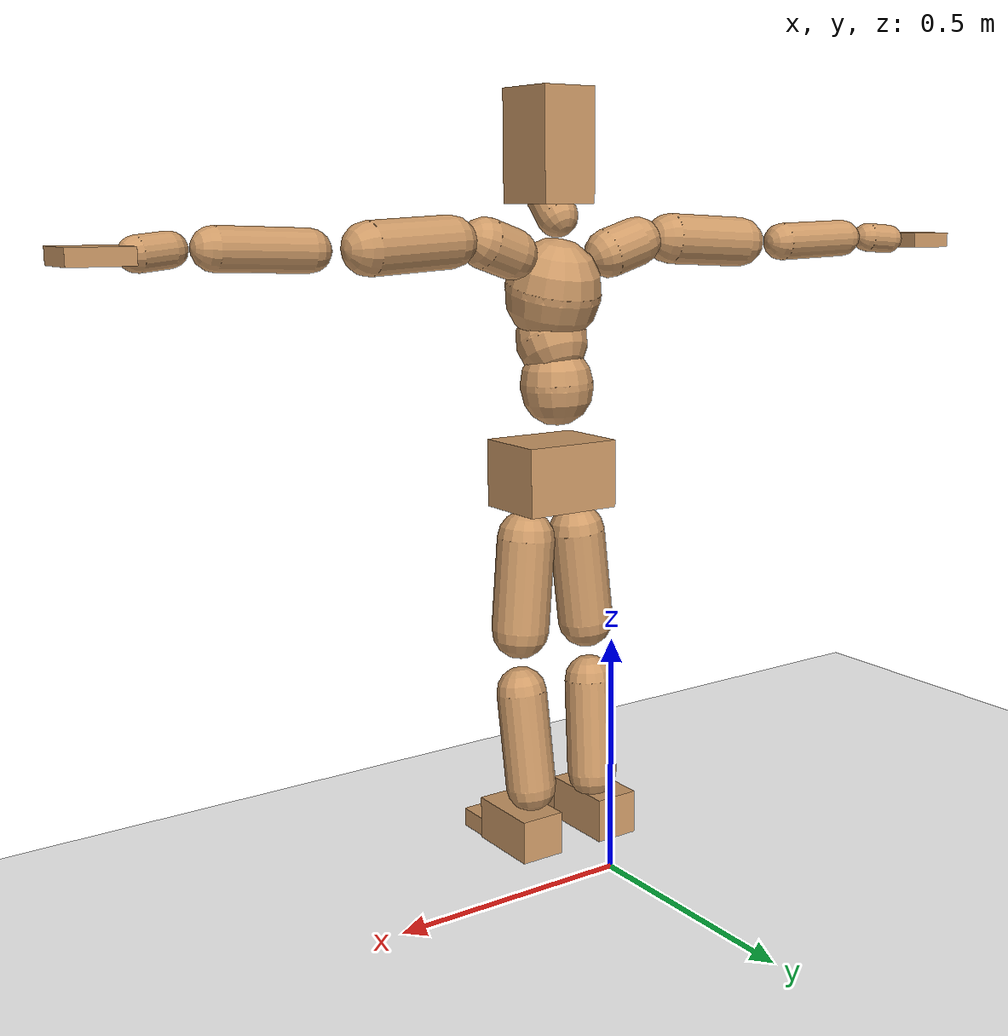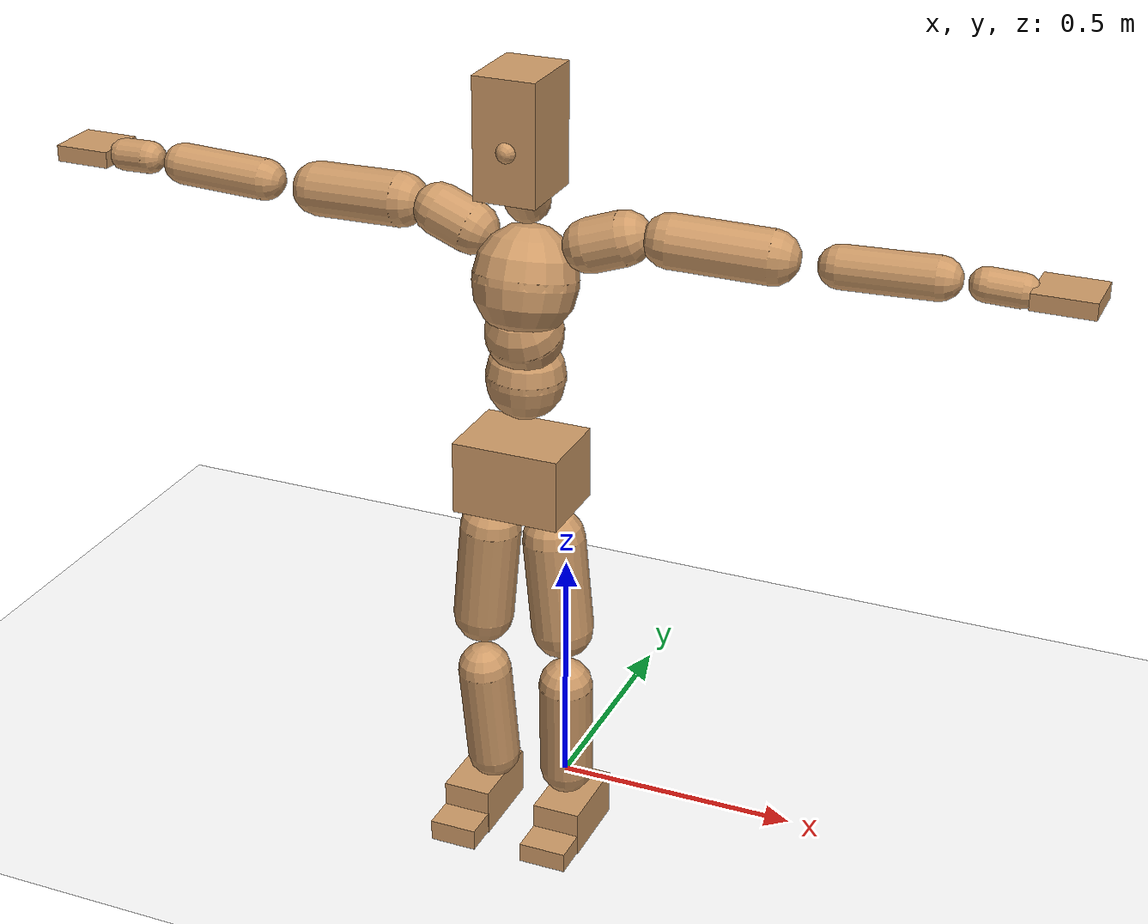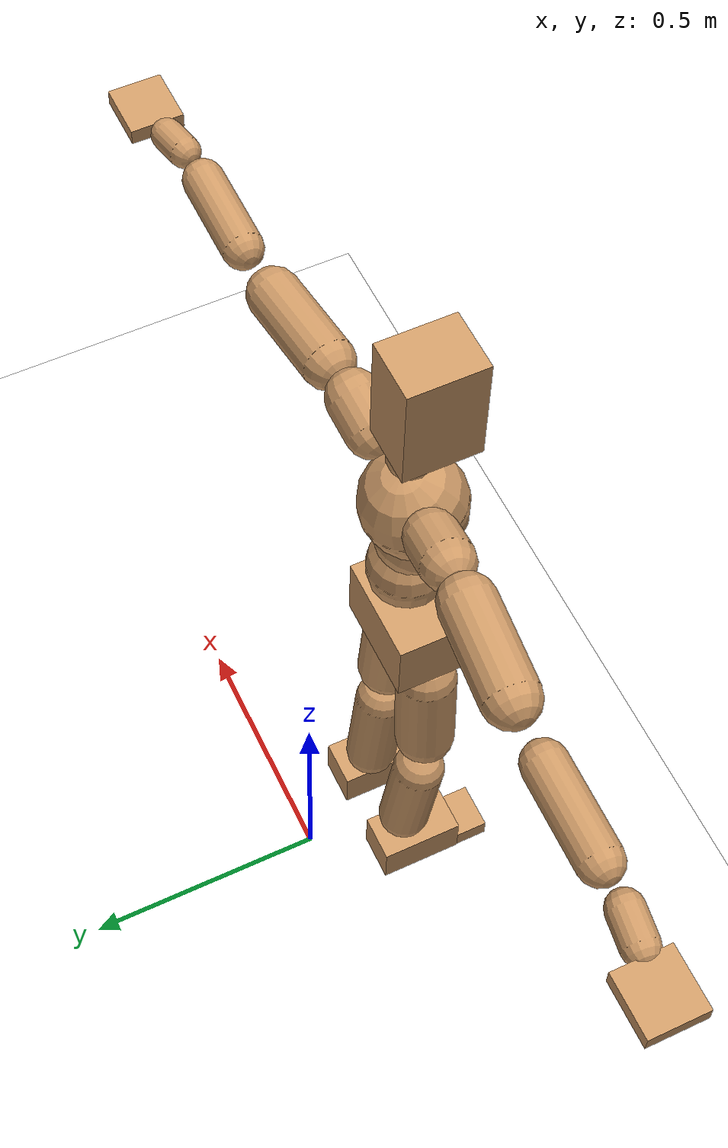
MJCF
<mujoco model="humanoid">
  <option integrator="implicitfast" />

  <visual>
    <global offwidth="1280" offheight="960" />
    <headlight active="1" ambient="0.34 0.34 0.34" diffuse="0.5 0.5 0.5" />
  </visual>

  <default>
    <joint damping="2" stiffness="2" armature="0.01" limited="true" solimplimit="0 .99 .01" />
    <geom condim="1" friction="0.7 0.005 0.0001" solimp=".99 .99 .003" solref="0.015 1" margin="0.001" rgba="0.8 0.6 .4 1" />
    <default class="smplcontact">
      <geom condim="3" friction="1. 0.005 0.0001" solref="0.015 1" solimp="0.98 0.98 0.001" priority="1" />
    </default>
    <default class="stiff_medium">
      <joint stiffness="10" />
    </default>
    <default class="stiff_medium_higher">
      <joint stiffness="50" />
    </default>
    <default class="stiff_high">
      <joint stiffness="100" />
    </default>
  </default>

  <asset>
    <texture type="skybox" builtin="gradient" rgb1="0.99 0.99 0.99" rgb2="0.608 0.828 0.892" width="100" />
    <texture builtin="flat" height="1278" mark="cross" markrgb="1 1 1" name="texgeom" random="0.01" rgb1="0.8 0.6 0.4" rgb2="0.8 0.6 0.4" type="cube" width="127" />
    <texture name="texplane" type="2d" builtin="checker" markrgb="1 1 1" rgb1="0.756 0.772 0.76" rgb2="0.6 0.6 0.6" width="100" height="100" />
    <material name="MatPlane" reflectance="0.5" texture="texplane" texrepeat="1 1" texuniform="true" />
    <material name="geom" texture="texgeom" texuniform="true" />
  </asset>

  <worldbody>
    <light name="tracking_light" pos="0 0 7" dir="0 0 -1" directional="true" cutoff="100" exponent="1" diffuse="1 1 1" specular="0.1 0.1 0.1" mode="trackcom" />
    <camera name="back" pos="0 3 2.4" xyaxes="-1 0 0 0 -1 2" mode="trackcom" />
    <camera name="side" pos="-3 0 2.4" xyaxes="0 -1 0 1 0 2" mode="trackcom" />
    <camera name="front_side" pos="-2.8 -2.8 0.8" xyaxes="0.5 -0.5 0 0.1 0.1 1" mode="trackcom" />
    <geom condim="3" name="floor" pos="0 0 0" rgba="1 1 1 1" size="100 100 .2" type="plane" material="MatPlane" />
    <body name="Pelvis" pos="-0.0018 -0.2233 0.825587" euler="90 0 0">
      <site name="Pelvis" size="0.01" />
      <freejoint name="Pelvis" />
      <geom type="box" pos="-0.0000 -0.0121 -0.0055" size="0.1069 0.0722 0.083" quat="1.0000 0.0000 0.0000 0.0000" density="3165.830099" name="Pelvis" />
      <body name="L_Hip" pos="0.0608125 -0.079975 -0.00595">
        <joint name="L_Hip_x" type="hinge" pos="0 0 0" axis="1 0 0" stiffness="8.018564387755102" range="-160.0 22.92" class="stiff_medium" damping="11.360360262787495" armature="0.00715327743412808"/>
        <joint name="L_Hip_y" type="hinge" pos="0 0 0" axis="0 1 0" stiffness="8.040343265306122" range="-70.0 70.0" class="stiff_medium" damping="8.207855033549663" armature="0.008378856726485993"/>
        <joint name="L_Hip_z" type="hinge" pos="0 0 0" axis="0 0 1" stiffness="8.038478673469386" range="-28.65 90.0" class="stiff_medium" damping="7.581991637464592" armature="0.007151427468522715"/>
        <geom type="capsule" density="2040.816327" fromto="0.0060375 -0.065625 -0.0007875 0.023975 -0.262675 -0.00315" size="0.0615" name="L_Hip" />
        <body name="L_Knee" pos="0.0300125 -0.3283 -0.0039375">
          <joint name="L_Knee_x" type="hinge" pos="0 0 0" axis="1 0 0" range="-5.16 171.89" damping="6.187481263356618" armature="0.007345812746914743" stiffness="1.6286882448979592"/>
          <joint name="L_Knee_y" type="hinge" pos="0 0 0" axis="0 1 0" range="-4.58 6.88" damping="6.664577128501176" armature="0.008600571968275737" stiffness="1.6138675306122447"/>
          <joint name="L_Knee_z" type="hinge" pos="0 0 0" axis="0 0 1" range="-6.88 4.58" damping="6.195974658750657" armature="0.007336542514311974" stiffness="1.635226244897959"/>
          <geom type="capsule" density="1234.567901" fromto="-0.0023625 -0.06965 -0.0076125 -0.0095375 -0.2786 -0.030625" size="0.0541" name="L_Knee" />
          <body name="L_Ankle" pos="-0.0119 -0.34825 -0.0382375">
            <joint name="L_Ankle_x" type="hinge" pos="0 0 0" axis="1 0 0" range="-45.84 45.84" class="stiff_medium" damping="5.16180813989309" armature="0.008458478225834364" stiffness="8.750018673469388"/>
            <joint name="L_Ankle_y" type="hinge" pos="0 0 0" axis="0 1 0" range="-74.48 22.92" class="stiff_medium" damping="2.5896377165389364" armature="0.008515827848834857" stiffness="8.750011836734695"/>
            <joint name="L_Ankle_z" type="hinge" pos="0 0 0" axis="0 0 1" range="-4.58 4.58" class="stiff_medium" damping="5.292201995620608" armature="0.008891238718238331" stiffness="8.75"/>
            <geom type="box" pos="0.0203875 -0.0209125 0.021175" size="0.0483 0.0464 0.085" quat="1.0000 0.0000 0.0000 0.0000" density="449.071558" name="L_Ankle" class="smplcontact" />
            <body name="L_Toe" pos="0.0231 -0.048825 0.104388">
              <joint name="L_Toe_x" type="hinge" pos="0 0 0" axis="1 0 0" range="-91.67 22.92" armature="0.009108934582590704" damping="1.785532722720798" stiffness="1.75"/>
              <joint name="L_Toe_y" type="hinge" pos="0 0 0" axis="0 1 0" range="-4.58 4.58" armature="0.009372172477213336" damping="1.811148908020726" stiffness="1.75"/>
              <joint name="L_Toe_z" type="hinge" pos="0 0 0" axis="0 0 1" range="-4.58 4.58" armature="0.009904425331424006" damping="1.8618670376797593" stiffness="1.75"/>
              <geom type="box" pos="-0.002625 0.0048125 0.0217" size="0.0478 0.02 0.0496" quat="1.0000 0.0000 0.0000 0.0000" density="423.206892" name="L_Toe" class="smplcontact" />
            </body>
          </body>
        </body>
      </body>
      <body name="R_Hip" pos="-0.0592375 -0.0791875 -0.0037625">
        <joint name="R_Hip_x" type="hinge" pos="0 0 0" axis="1 0 0" stiffness="8.018564387755102" range="-160.0 22.92" class="stiff_medium" damping="11.360360262787495" armature="0.00715327743412808"/>
        <joint name="R_Hip_y" type="hinge" pos="0 0 0" axis="0 1 0" stiffness="8.040343265306122" range="-70.0 70.0" class="stiff_medium" damping="8.207855033549663" armature="0.008378856726485993"/>
        <joint name="R_Hip_z" type="hinge" pos="0 0 0" axis="0 0 1" stiffness="8.038478673469386" range="-90.0 28.65" class="stiff_medium" damping="7.581991637464592" armature="0.007151427468522715"/>
        <geom type="capsule" density="2040.816327" fromto="-0.0067375 -0.0669375 -0.001575 -0.026775 -0.267838 -0.0062125" size="0.0606" name="R_Hip" />
        <body name="R_Knee" pos="-0.0335125 -0.334775 -0.0077875">
          <joint name="R_Knee_x" type="hinge" pos="0 0 0" axis="1 0 0" range="-5.16 171.89" damping="6.187481263356618" armature="0.007345812746914743" stiffness="1.6286882448979592"/>
          <joint name="R_Knee_y" type="hinge" pos="0 0 0" axis="0 1 0" range="-6.88 4.58" damping="6.664577128501176" armature="0.008600571968275737" stiffness="1.6138675306122447"/>
          <joint name="R_Knee_z" type="hinge" pos="0 0 0" axis="0 0 1" range="-4.58 6.88" damping="6.195974658750657" armature="0.007336542514311974" stiffness="1.635226244897959"/>
          <geom type="capsule" density="1234.567901" fromto="0.0028 -0.0697375 -0.0074375 0.011025 -0.278863 -0.029575" size="0.0541" name="R_Knee" />
          <body name="R_Ankle" pos="0.013825 -0.3486 -0.0370125">
            <joint name="R_Ankle_x" type="hinge" pos="0 0 0" axis="1 0 0" range="-45.84 45.84" class="stiff_medium" damping="5.16180813989309" armature="0.008458478225834364" stiffness="8.750018673469388"/>
            <joint name="R_Ankle_y" type="hinge" pos="0 0 0" axis="0 1 0" range="-22.92 74.48" class="stiff_medium" damping="2.5896377165389364" armature="0.008515827848834857" stiffness="8.750011836734695"/>
            <joint name="R_Ankle_z" type="hinge" pos="0 0 0" axis="0 0 1" range="-4.58 4.58" class="stiff_medium" damping="5.292201995620608" armature="0.008891238718238331" stiffness="8.75"/>
            <geom type="box" pos="-0.01855 -0.015225 0.0224" size="0.0483 0.0478 0.0865" quat="1.0000 0.0000 0.0000 0.0000" density="434.700981" name="R_Ankle" class="smplcontact" />
            <body name="R_Toe" pos="-0.022225 -0.0420875 0.107888">
              <joint name="R_Toe_x" type="hinge" pos="0 0 0" axis="1 0 0" range="-91.67 22.92" armature="0.009108934582590704" damping="1.785532722720798" stiffness="1.75"/>
              <joint name="R_Toe_y" type="hinge" pos="0 0 0" axis="0 1 0" range="-4.58 4.58" armature="0.009372172477213336" damping="1.811148908020726" stiffness="1.75"/>
              <joint name="R_Toe_z" type="hinge" pos="0 0 0" axis="0 0 1" range="-4.58 4.58" armature="0.009904425331424006" damping="1.8618670376797593" stiffness="1.75"/>
              <geom type="box" pos="0.003675 0.0039375 0.0198625" size="0.0479 0.0216 0.0493" quat="1.0000 0.0000 0.0000 0.0000" density="407.384095" name="R_Toe" class="smplcontact" />
            </body>
          </body>
        </body>
      </body>
      <body name="Torso" pos="-0.0025 0.109 -0.0267">
        <joint name="Torso_x" type="hinge" pos="0 0 0" axis="1 0 0" range="-25.78 57.3" class="stiff_medium" damping="16.24900266237955" armature="0.011000822944888114" stiffness="10.667084285714289"/>
        <joint name="Torso_y" type="hinge" pos="0 0 0" axis="0 1 0" range="-57.3 57.3" class="stiff_high" damping="25.827862257678852" armature="0.015782642166796146" stiffness="105.6664755102041"/>
        <joint name="Torso_z" type="hinge" pos="0 0 0" axis="0 0 1" range="-34.38 34.38" class="stiff_high" damping="22.95942684909093" armature="0.012628565201764905" stiffness="104.35375531914897"/>
        <geom type="capsule" density="2040.816327" fromto="0.0025 0.0608 0.0005 0.003 0.0743 0.0006" size="0.0769" name="Torso" />
        <body name="Spine" pos="0.0055 0.1352 0.0011">
          <joint name="Spine_x" type="hinge" pos="0 0 0" axis="1 0 0" stiffness="10.801640204081632" range="-25.78 57.3" class="stiff_medium" damping="16.52949868968122" armature="0.011242092117287042"/>
          <joint name="Spine_y" type="hinge" pos="0 0 0" axis="0 1 0" stiffness="10.993194042553192" range="-57.3 57.3" class="stiff_high" damping="10.550939846165114" armature="0.015822621024438047"/>
          <joint name="Spine_z" type="hinge" pos="0 0 0" axis="0 0 1" stiffness="21.950184081632656" range="-34.38 34.38" class="stiff_high" damping="14.755254913518767" armature="0.013775988465595863"/>
          <geom type="capsule" density="2040.816327" fromto="0.0007 0.0238 0.0114 0.0008 0.0291 0.014" size="0.0755" name="Spine" />
          <body name="Chest" pos="0.0015 0.0529 0.0254">
            <joint name="Chest_x" type="hinge" pos="0 0 0" axis="1 0 0" stiffness="11.160686250000001" range="-25.78 57.3" class="stiff_medium" damping="16.91302563562016" armature="0.011391192649850411"/>
            <joint name="Chest_y" type="hinge" pos="0 0 0" axis="0 1 0" stiffness="12.279827826086954" range="-57.3 57.3" class="stiff_high" damping="11.15352776697087" armature="0.015828955346832544"/>
            <joint name="Chest_z" type="hinge" pos="0 0 0" axis="0 0 1" stiffness="22.066057083333334" range="-34.38 34.38" class="stiff_high" damping="15.064016907343916" armature="0.014283161773945485"/>
            <geom type="capsule" density="2040.816327" fromto="-0.0009 0.0682 -0.0173 -0.001 0.0833 -0.0212" size="0.1002" name="Chest" />
            <body name="Neck" pos="-0.0028 0.2139 -0.0429">
              <joint name="Neck_x" type="hinge" pos="0 0 0" axis="1 0 0" range="-28.65 57.3" class="stiff_medium_higher" damping="10.000000000000004" armature="0.01000000000000001" stiffness="50.0"/>
              <joint name="Neck_y" type="hinge" pos="0 0 0" axis="0 1 0" range="-40.11 40.11" class="stiff_medium_higher" damping="10.0" armature="0.010000000000000002" stiffness="50.0"/>
              <joint name="Neck_z" type="hinge" pos="0 0 0" axis="0 0 1" range="-40.11 40.11" class="stiff_medium_higher" damping="10.0" armature="0.01" stiffness="50.0"/>
              <geom type="capsule" density="1000" fromto="0.001 0.013 0.0103 0.0041 0.052 0.0411" size="0.0436" name="Neck" />
              <body name="Head" pos="0.0052 0.065 0.0513">
                <joint name="Head_x" type="hinge" pos="0 0 0" axis="1 0 0" range="-28.65 57.3" class="stiff_medium_higher" damping="2.0" armature="0.01" stiffness="50.0"/>
                <joint name="Head_y" type="hinge" pos="0 0 0" axis="0 1 0" range="-40.11 40.11" class="stiff_medium_higher" damping="2.0" armature="0.01" stiffness="50.0"/>
                <joint name="Head_z" type="hinge" pos="0 0 0" axis="0 0 1" range="-40.11 40.11" class="stiff_medium_higher" damping="1.9999999999999987" armature="0.009999999999999988" stiffness="50.0"/>
                <geom type="box" pos="-0.0042 0.0876 -0.0116" size="0.0606 0.1154 0.076" quat="1.0000 0.0000 0.0000 0.0000" density="1018.069894" name="Head" />
                <geom type="capsule" name="nose" size="0.02 0.01" pos="0 0.07 0.05" quat="1 0 0 0" mass="0" contype="0" conaffinity="0" />
              </body>
            </body>
            <body name="L_Thorax" pos="0.09456 0.14604 -0.04092">
              <joint name="L_Thorax_x" type="hinge" pos="0 0 0" axis="1 0 0" range="-10.89 4.58" class="stiff_medium_higher" damping="27.34282803714544" armature="0.013883161405287439" stiffness="67.31448112244898"/>
              <joint name="L_Thorax_y" type="hinge" pos="0 0 0" axis="0 1 0" range="-28.65 17.19" class="stiff_medium_higher" damping="29.39539222803986" armature="0.015973211475722778" stiffness="67.620175"/>
              <joint name="L_Thorax_z" type="hinge" pos="0 0 0" axis="0 0 1" range="-31.51 40.11" class="stiff_medium_higher" damping="29.39640952740423" armature="0.01597511513827912" stiffness="67.61679693877551"/>
              <geom type="capsule" density="1000" fromto="0.02184 0.00732 -0.00216 0.08736 0.02928 -0.00852" size="0.0521" name="L_Thorax" />
              <body name="L_Shoulder" pos="0.1092 0.0366 -0.01068">
                <joint name="L_Shoulder_x" type="hinge" pos="0 0 0" axis="1 0 0" range="-97.4 97.4" class="stiff_medium" damping="7.934224871342828" armature="0.0130323072737046" stiffness="13.417919999999999"/>
                <joint name="L_Shoulder_y" type="hinge" pos="0 0 0" axis="0 1 0" range="-108.86 80.21" class="stiff_medium" damping="8.787023272078153" armature="0.015885669306109258" stiffness="13.501298367346937"/>
                <joint name="L_Shoulder_z" type="hinge" pos="0 0 0" axis="0 0 1" range="-97.4 85.94" class="stiff_medium" damping="8.786069504764413" armature="0.015888008764521212" stiffness="13.496380000000002"/>
                <geom type="capsule" density="1000" fromto="0.06228 -0.00312 -0.0066 0.24924 -0.01224 -0.0264" size="0.0517" name="L_Shoulder" />
                <body name="L_Elbow" pos="0.31152 -0.01536 -0.033">
                  <joint name="L_Elbow_x" type="hinge" pos="0 0 0" axis="1 0 0" range="-17.19 4.58" damping="6.232456205291431" armature="0.01173152521758843" stiffness="2.6488293469387756"/>
                  <joint name="L_Elbow_y" type="hinge" pos="0 0 0" axis="0 1 0" range="-180.0 17.19" damping="7.1561063679721615" armature="0.015461775606096727" stiffness="2.649623673469388"/>
                  <joint name="L_Elbow_z" type="hinge" pos="0 0 0" axis="0 0 1" range="-100.84 4.58" damping="7.157115854883429" armature="0.015474031127394233" stiffness="2.648272163265306"/>
                  <geom type="capsule" density="1000" fromto="0.05976 0.00216 -0.00024 0.23928 0.00864 -0.00108" size="0.0405" name="L_Elbow" />
                  <body name="L_Wrist" pos="0.29904 0.0108 -0.00144">
                    <joint name="L_Wrist_x" type="hinge" pos="0 0 0" axis="1 0 0" range="-180.0 22.92" armature="0.01147048725635361" damping="2.3885555565203527" stiffness="2.4869029183673472"/>
                    <joint name="L_Wrist_y" type="hinge" pos="0 0 0" axis="0 1 0" range="-17.19 17.19" armature="0.01413784103297409" damping="2.658561374727906" stiffness="2.4996562653061227"/>
                    <joint name="L_Wrist_z" type="hinge" pos="0 0 0" axis="0 0 1" range="-22.92 22.92" armature="0.014283798741946503" damping="2.6694984653463063" stiffness="2.4945122040816328"/>
                    <geom type="capsule" density="1000" fromto="0.02016 -0.00192 -0.0036 0.08064 -0.0078 -0.0144" size="0.0318" name="L_Wrist" class="smplcontact" />
                    <body name="L_Hand" pos="0.1008 -0.00984 -0.01788">
                      <joint name="L_Hand_x" type="hinge" pos="0 0 0" axis="1 0 0" range="-17.19 17.19" armature="0.010191691106290484" damping="2.2117892600832096" stiffness="2.4000000000000004"/>
                      <joint name="L_Hand_y" type="hinge" pos="0 0 0" axis="0 1 0" range="-51.57 51.57" armature="0.012318239464289315" damping="2.4316157062453088" stiffness="2.4000000000000004"/>
                      <joint name="L_Hand_z" type="hinge" pos="0 0 0" axis="0 0 1" range="-91.67 91.67" armature="0.012885099984317453" damping="2.48693546206418" stiffness="2.4000000000000004"/>
                      <geom type="box" pos="0.05916 0.0012 -0.00696" size="0.0585 0.0158 0.0538" quat="1.0000 0.0000 0.0000 0.0000" density="400.552564" name="L_Hand" class="smplcontact" />
                    </body>
                  </body>
                </body>
              </body>
            </body>
            <body name="R_Thorax" pos="-0.09816 0.14256 -0.04632">
              <joint name="R_Thorax_x" type="hinge" pos="0 0 0" axis="1 0 0" range="-10.89 4.58" class="stiff_medium_higher" damping="27.34282803714544" armature="0.013883161405287439" stiffness="67.31448112244898"/>
              <joint name="R_Thorax_y" type="hinge" pos="0 0 0" axis="0 1 0" range="-17.19 28.65" class="stiff_medium_higher" damping="29.39539222803986" armature="0.015973211475722778" stiffness="67.620175"/>
              <joint name="R_Thorax_z" type="hinge" pos="0 0 0" axis="0 0 1" range="-40.11 31.51" class="stiff_medium_higher" damping="29.39640952740423" armature="0.01597511513827912" stiffness="67.61679693877551"/>
              <geom type="capsule" density="1000" fromto="-0.02304 0.0078 -0.00216 -0.09216 0.0312 -0.00876" size="0.0511" name="R_Thorax" />
              <body name="R_Shoulder" pos="-0.1152 0.03912 -0.01092">
                <joint name="R_Shoulder_x" type="hinge" pos="0 0 0" axis="1 0 0" range="-97.4 97.4" class="stiff_medium" damping="7.934224871342828" armature="0.0130323072737046" stiffness="13.417919999999999"/>
                <joint name="R_Shoulder_y" type="hinge" pos="0 0 0" axis="0 1 0" range="-80.21 108.86" class="stiff_medium" damping="8.787023272078153" armature="0.015885669306109258" stiffness="13.501298367346937"/>
                <joint name="R_Shoulder_z" type="hinge" pos="0 0 0" axis="0 0 1" range="-85.94 97.4" class="stiff_medium" damping="8.786069504764413" armature="0.015888008764521212" stiffness="13.496380000000002"/>
                <geom type="capsule" density="1000" fromto="-0.06084 -0.00324 -0.00516 -0.2436 -0.01284 -0.02052" size="0.0531" name="R_Shoulder" />
                <body name="R_Elbow" pos="-0.30444 -0.01596 -0.02568">
                  <joint name="R_Elbow_x" type="hinge" pos="0 0 0" axis="1 0 0" range="-17.19 4.58" damping="6.232456205291431" armature="0.01173152521758843" stiffness="2.6488293469387756"/>
                  <joint name="R_Elbow_y" type="hinge" pos="0 0 0" axis="0 1 0" range="-17.19 180.0" damping="7.1561063679721615" armature="0.015461775606096727" stiffness="2.649623673469388"/>
                  <joint name="R_Elbow_z" type="hinge" pos="0 0 0" axis="0 0 1" range="-4.58 100.84" damping="7.157115854883429" armature="0.015474031127394233" stiffness="2.648272163265306"/>
                  <geom type="capsule" density="1000" fromto="-0.06132 0.00192 -0.00132 -0.24504 0.00744 -0.00528" size="0.0408" name="R_Elbow" />
                  <body name="R_Wrist" pos="-0.30636 0.00936 -0.00672">
                    <joint name="R_Wrist_x" type="hinge" pos="0 0 0" axis="1 0 0" range="-180.0 22.92" armature="0.01147048725635361" damping="2.3885555565203527" stiffness="2.4869029183673472"/>
                    <joint name="R_Wrist_y" type="hinge" pos="0 0 0" axis="0 1 0" range="-17.19 17.19" armature="0.01413784103297409" damping="2.658561374727906" stiffness="2.4996562653061227"/>
                    <joint name="R_Wrist_z" type="hinge" pos="0 0 0" axis="0 0 1" range="-22.92 22.92" armature="0.014283798741946503" damping="2.6694984653463063" stiffness="2.4945122040816328"/>
                    <geom type="capsule" density="1000" fromto="-0.02028 -0.00144 -0.00252 -0.08124 -0.00588 -0.00996" size="0.0326" name="R_Wrist" class="smplcontact" />
                    <body name="R_Hand" pos="-0.10152 -0.00732 -0.01236">
                      <joint name="R_Hand_x" type="hinge" pos="0 0 0" axis="1 0 0" range="-17.19 17.19" armature="0.010191691106290484" damping="2.2117892600832096" stiffness="2.4000000000000004"/>
                      <joint name="R_Hand_y" type="hinge" pos="0 0 0" axis="0 1 0" range="-51.57 51.57" armature="0.012318239464289315" damping="2.4316157062453088" stiffness="2.4000000000000004"/>
                      <joint name="R_Hand_z" type="hinge" pos="0 0 0" axis="0 0 1" range="-91.67 91.67" armature="0.012885099984317453" damping="2.48693546206418" stiffness="2.4000000000000004"/>
                      <geom type="box" pos="-0.05544 -0.00108 -0.00948" size="0.0569 0.0164 0.0546" quat="1.0000 0.0000 0.0000 0.0000" density="403.679611" name="R_Hand" class="smplcontact" />
                    </body>
                  </body>
                </body>
              </body>
            </body>
          </body>
        </body>
      </body>
    </body>
  </worldbody>
  <actuator>
    <general name="L_Hip_x" joint="L_Hip_x" biastype="affine" gainprm="230.3974619502181" biasprm="-172.65954561631258 -144.33415897959185 -1.5147147017049993" ctrllimited="true" ctrlrange="-1 1" forcerange="-288.6683179591837 288.6683179591837" />
    <general name="L_Hip_y" joint="L_Hip_y" biastype="affine" gainprm="176.8163833423812" biasprm="0.0 -144.7261787755102 -1.6415710067099327" ctrllimited="true" ctrlrange="-1 1" forcerange="-289.4523575510204 289.4523575510204" />
    <general name="L_Hip_z" joint="L_Hip_z" biastype="affine" gainprm="149.81713355526176" biasprm="77.4654963642251 -144.69261612244895 -1.5163983274929183" ctrllimited="true" ctrlrange="-1 1" forcerange="-289.3852322448979 289.3852322448979" />
    <general name="L_Knee_x" joint="L_Knee_x" biastype="affine" gainprm="226.4768283011216" biasprm="213.27580673621011 -146.58194204081633 -1.5468703158391546" ctrllimited="true" ctrlrange="-1 1" forcerange="-293.16388408163266 293.16388408163266" />
    <general name="L_Knee_y" joint="L_Knee_y" biastype="affine" gainprm="14.525877693080384" biasprm="2.915315767372154 -145.24807775510203 -1.666144282125294" ctrllimited="true" ctrlrange="-1 1" forcerange="-290.49615551020406 290.49615551020406" />
    <general name="L_Knee_z" joint="L_Knee_z" biastype="affine" gainprm="14.718120281465588" biasprm="-2.953898485808975 -147.17036204081631 -1.5489936646876643" ctrllimited="true" ctrlrange="-1 1" forcerange="-294.34072408163263 294.34072408163263" />
    <general name="L_Ankle_x" joint="L_Ankle_x" biastype="affine" gainprm="63.0047751266266" biasprm="0.0 -78.75016806122449 -1.7206027132976967" ctrllimited="true" ctrlrange="-1 1" forcerange="-157.50033612244897 157.50033612244897" />
    <general name="L_Ankle_y" joint="L_Ankle_y" biastype="affine" gainprm="66.93564902394152" biasprm="-35.43328607468609 -78.75010653061226 -1.7264251443592908" ctrllimited="true" ctrlrange="-1 1" forcerange="-157.5002130612245 157.5002130612245" />
    <general name="L_Ankle_z" joint="L_Ankle_z" biastype="affine" gainprm="6.294966279630548" biasprm="0.0 -78.75 -1.7640673318735358" ctrllimited="true" ctrlrange="-1 1" forcerange="-157.5 157.5" />
    <general name="L_Toe_x" joint="L_Toe_x" biastype="affine" gainprm="62.999142880599514" biasprm="-37.797286613502195 -63.0 -0.7142130890883193" ctrllimited="true" ctrlrange="-1 1" forcerange="-126.0 126.0" />
    <general name="L_Toe_y" joint="L_Toe_y" biastype="affine" gainprm="5.035973023704439" biasprm="0.0 -63.0 -0.7244595632082904" ctrllimited="true" ctrlrange="-1 1" forcerange="-126.0 126.0" />
    <general name="L_Toe_z" joint="L_Toe_z" biastype="affine" gainprm="5.035973023704439" biasprm="0.0 -63.0 -0.7447468150719038" ctrllimited="true" ctrlrange="-1 1" forcerange="-126.0 126.0" />
    <general name="R_Hip_x" joint="R_Hip_x" biastype="affine" gainprm="230.3974619502181" biasprm="-172.65954561631258 -144.33415897959185 -1.5147147017049993" ctrllimited="true" ctrlrange="-1 1" forcerange="-288.6683179591837 288.6683179591837" />
    <general name="R_Hip_y" joint="R_Hip_y" biastype="affine" gainprm="176.8163833423812" biasprm="0.0 -144.7261787755102 -1.6415710067099327" ctrllimited="true" ctrlrange="-1 1" forcerange="-289.4523575510204 289.4523575510204" />
    <general name="R_Hip_z" joint="R_Hip_z" biastype="affine" gainprm="149.81713355526176" biasprm="-77.4654963642251 -144.69261612244895 -1.5163983274929183" ctrllimited="true" ctrlrange="-1 1" forcerange="-289.3852322448979 289.3852322448979" />
    <general name="R_Knee_x" joint="R_Knee_x" biastype="affine" gainprm="226.4768283011216" biasprm="213.27580673621011 -146.58194204081633 -1.5468703158391546" ctrllimited="true" ctrlrange="-1 1" forcerange="-293.16388408163266 293.16388408163266" />
    <general name="R_Knee_y" joint="R_Knee_y" biastype="affine" gainprm="14.525877693080384" biasprm="-2.915315767372154 -145.24807775510203 -1.666144282125294" ctrllimited="true" ctrlrange="-1 1" forcerange="-290.49615551020406 290.49615551020406" />
    <general name="R_Knee_z" joint="R_Knee_z" biastype="affine" gainprm="14.718120281465588" biasprm="2.953898485808975 -147.17036204081631 -1.5489936646876643" ctrllimited="true" ctrlrange="-1 1" forcerange="-294.34072408163263 294.34072408163263" />
    <general name="R_Ankle_x" joint="R_Ankle_x" biastype="affine" gainprm="63.0047751266266" biasprm="0.0 -78.75016806122449 -1.7206027132976967" ctrllimited="true" ctrlrange="-1 1" forcerange="-157.50033612244897 157.50033612244897" />
    <general name="R_Ankle_y" joint="R_Ankle_y" biastype="affine" gainprm="66.93564902394152" biasprm="35.43328607468609 -78.75010653061226 -1.7264251443592908" ctrllimited="true" ctrlrange="-1 1" forcerange="-157.5002130612245 157.5002130612245" />
    <general name="R_Ankle_z" joint="R_Ankle_z" biastype="affine" gainprm="6.294966279630548" biasprm="0.0 -78.75 -1.7640673318735358" ctrllimited="true" ctrlrange="-1 1" forcerange="-157.5 157.5" />
    <general name="R_Toe_x" joint="R_Toe_x" biastype="affine" gainprm="62.999142880599514" biasprm="-37.797286613502195 -63.0 -0.7142130890883193" ctrllimited="true" ctrlrange="-1 1" forcerange="-126.0 126.0" />
    <general name="R_Toe_y" joint="R_Toe_y" biastype="affine" gainprm="5.035973023704439" biasprm="0.0 -63.0 -0.7244595632082904" ctrllimited="true" ctrlrange="-1 1" forcerange="-126.0 126.0" />
    <general name="R_Toe_z" joint="R_Toe_z" biastype="affine" gainprm="5.035973023704439" biasprm="0.0 -63.0 -0.7447468150719038" ctrllimited="true" ctrlrange="-1 1" forcerange="-126.0 126.0" />
    <general name="Torso_x" joint="Torso_x" biastype="affine" gainprm="185.60976811664653" biasprm="70.4191127953382 -256.0100228571429 -4.333067376634546" ctrllimited="true" ctrlrange="-1 1" forcerange="-384.01503428571436 384.01503428571436" />
    <general name="Torso_y" joint="Torso_y" biastype="affine" gainprm="253.61822171989738" biasprm="0.0 -253.59954122448983 -5.165572451535771" ctrllimited="true" ctrlrange="-1 1" forcerange="-380.39931183673474 380.39931183673474" />
    <general name="Torso_z" joint="Torso_z" biastype="affine" gainprm="150.28047671343057" biasprm="0.0 -250.44901276595752 -4.591885369818186" ctrllimited="true" ctrlrange="-1 1" forcerange="-375.6735191489363 375.6735191489363" />
    <general name="Spine_x" joint="Spine_x" biastype="affine" gainprm="187.9510726510386" biasprm="71.3073881795948 -259.2393648979592 -4.407866317248325" ctrllimited="true" ctrlrange="-1 1" forcerange="-388.8590473469388 388.8590473469388" />
    <general name="Spine_y" joint="Spine_y" biastype="affine" gainprm="263.8560915968915" biasprm="0.0 -263.8366570212766 -5.275469923082557" ctrllimited="true" ctrlrange="-1 1" forcerange="-395.7549855319149 395.7549855319149" />
    <general name="Spine_z" joint="Spine_z" biastype="affine" gainprm="158.05296693189538" biasprm="0.0 -263.4022089795919 -4.918418304506256" ctrllimited="true" ctrlrange="-1 1" forcerange="-395.1033134693878 395.1033134693878" />
    <general name="Chest_x" joint="Chest_x" biastype="affine" gainprm="194.19855805015155" biasprm="73.67764263048598 -267.85647 -4.510140169498709" ctrllimited="true" ctrlrange="-1 1" forcerange="-401.78470500000003 401.78470500000003" />
    <general name="Chest_y" joint="Chest_y" biastype="affine" gainprm="294.73757700737673" biasprm="0.0 -294.71586782608694 -5.576763883485435" ctrllimited="true" ctrlrange="-1 1" forcerange="-442.0738017391304 442.0738017391304" />
    <general name="Chest_z" joint="Chest_z" biastype="affine" gainprm="158.88731399878043" biasprm="0.0 -264.792685 -5.021338969114638" ctrllimited="true" ctrlrange="-1 1" forcerange="-397.1890275 397.1890275" />
    <general name="Neck_x" joint="Neck_x" biastype="affine" gainprm="27.00198885760427" biasprm="9.000662952534757 -36.0 -0.8000000000000004" ctrllimited="true" ctrlrange="-1 1" forcerange="-72.0 72.0" />
    <general name="Neck_y" joint="Neck_y" biastype="affine" gainprm="25.20185626709732" biasprm="0.0 -36.0 -0.8" ctrllimited="true" ctrlrange="-1 1" forcerange="-72.0 72.0" />
    <general name="Neck_z" joint="Neck_z" biastype="affine" gainprm="25.20185626709732" biasprm="0.0 -36.0 -0.8" ctrllimited="true" ctrlrange="-1 1" forcerange="-72.0 72.0" />
    <general name="Head_x" joint="Head_x" biastype="affine" gainprm="18.001325905069514" biasprm="6.000441968356505 -24.0 -0.8" ctrllimited="true" ctrlrange="-1 1" forcerange="-48.0 48.0" />
    <general name="Head_y" joint="Head_y" biastype="affine" gainprm="16.801237511398213" biasprm="0.0 -24.0 -0.8" ctrllimited="true" ctrlrange="-1 1" forcerange="-48.0 48.0" />
    <general name="Head_z" joint="Head_z" biastype="affine" gainprm="16.801237511398213" biasprm="0.0 -24.0 -0.7999999999999995" ctrllimited="true" ctrlrange="-1 1" forcerange="-48.0 48.0" />
    <general name="L_Thorax_x" joint="L_Thorax_x" biastype="affine" gainprm="21.810088599489532" biasprm="-8.896034845687073 -161.55475469387756 -2.1874262429716356" ctrllimited="true" ctrlrange="-1 1" forcerange="-323.1095093877551 323.1095093877551" />
    <general name="L_Thorax_y" joint="L_Thorax_y" biastype="affine" gainprm="64.92014975641781" biasprm="-16.230037439104454 -162.28842 -2.3516313782431886" ctrllimited="true" ctrlrange="-1 1" forcerange="-324.57684 324.57684" />
    <general name="L_Thorax_z" joint="L_Thorax_z" biastype="affine" gainprm="101.42558571489965" biasprm="12.179000797935451 -162.28031265306123 -2.3517127621923386" ctrllimited="true" ctrlrange="-1 1" forcerange="-324.56062530612246 324.56062530612246" />
    <general name="L_Shoulder_x" joint="L_Shoulder_x" biastype="affine" gainprm="109.48705143225524" biasprm="0.0 -64.406016 -2.1157932990247543" ctrllimited="true" ctrlrange="-1 1" forcerange="-128.812032 128.812032" />
    <general name="L_Shoulder_y" joint="L_Shoulder_y" biastype="affine" gainprm="106.92684888169526" biasprm="-16.202751470146342 -64.80623216326529 -2.343206205887508" ctrllimited="true" ctrlrange="-1 1" forcerange="-129.61246432653058 129.61246432653058" />
    <general name="L_Shoulder_z" joint="L_Shoulder_z" biastype="affine" gainprm="103.64852686442701" biasprm="-6.478739597831004 -64.782624 -2.342951867937177" ctrllimited="true" ctrlrange="-1 1" forcerange="-129.565248 129.565248" />
    <general name="L_Elbow_x" joint="L_Elbow_x" biastype="affine" gainprm="18.115998712513008" biasprm="-10.493465492181402 -95.35785648979592 -0.997192992846629" ctrllimited="true" ctrlrange="-1 1" forcerange="-190.71571297959184 190.71571297959184" />
    <general name="L_Elbow_y" joint="L_Elbow_y" biastype="affine" gainprm="164.14171059385552" biasprm="-135.52366703070956 -95.38645224489797 -1.144977018875546" ctrllimited="true" ctrlrange="-1 1" forcerange="-190.77290448979593 190.77290448979593" />
    <general name="L_Elbow_z" joint="L_Elbow_z" biastype="affine" gainprm="87.70725119427513" biasprm="-80.08632138077144 -95.33779787755103 -1.1451385367813487" ctrllimited="true" ctrlrange="-1 1" forcerange="-190.67559575510205 190.67559575510205" />
    <general name="L_Wrist_x" joint="L_Wrist_x" biastype="affine" gainprm="26.423011144121567" biasprm="-20.454004487081686 -14.921417510204083 -0.9554222226081411" ctrllimited="true" ctrlrange="-1 1" forcerange="-29.842835020408167 29.842835020408167" />
    <general name="L_Wrist_y" joint="L_Wrist_y" biastype="affine" gainprm="4.499712708242443" biasprm="0.0 -14.997937591836736 -1.0634245498911625" ctrllimited="true" ctrlrange="-1 1" forcerange="-29.995875183673473 29.995875183673473" />
    <general name="L_Wrist_z" joint="L_Wrist_z" biastype="affine" gainprm="5.987270287979567" biasprm="0.0 -14.967073224489797 -1.0677993861385227" ctrllimited="true" ctrlrange="-1 1" forcerange="-29.934146448979593 29.934146448979593" />
    <general name="L_Hand_x" joint="L_Hand_x" biastype="affine" gainprm="4.320318217216685" biasprm="0.0 -14.400000000000002 -0.8847157040332839" ctrllimited="true" ctrlrange="-1 1" forcerange="-28.800000000000004 28.800000000000004" />
    <general name="L_Hand_y" joint="L_Hand_y" biastype="affine" gainprm="12.960954651650052" biasprm="0.0 -14.400000000000002 -0.9726462824981236" ctrllimited="true" ctrlrange="-1 1" forcerange="-28.800000000000004 28.800000000000004" />
    <general name="L_Hand_z" joint="L_Hand_z" biastype="affine" gainprm="23.03918388436611" biasprm="0.0 -14.400000000000002 -0.9947741848256721" ctrllimited="true" ctrlrange="-1 1" forcerange="-28.800000000000004 28.800000000000004" />
    <general name="R_Thorax_x" joint="R_Thorax_x" biastype="affine" gainprm="21.810088599489532" biasprm="-8.896034845687073 -161.55475469387756 -2.1874262429716356" ctrllimited="true" ctrlrange="-1 1" forcerange="-323.1095093877551 323.1095093877551" />
    <general name="R_Thorax_y" joint="R_Thorax_y" biastype="affine" gainprm="64.92014975641781" biasprm="16.230037439104443 -162.28842 -2.3516313782431886" ctrllimited="true" ctrlrange="-1 1" forcerange="-324.57684 324.57684" />
    <general name="R_Thorax_z" joint="R_Thorax_z" biastype="affine" gainprm="101.42558571489965" biasprm="-12.179000797935451 -162.28031265306123 -2.3517127621923386" ctrllimited="true" ctrlrange="-1 1" forcerange="-324.56062530612246 324.56062530612246" />
    <general name="R_Shoulder_x" joint="R_Shoulder_x" biastype="affine" gainprm="109.48705143225524" biasprm="0.0 -64.406016 -2.1157932990247543" ctrllimited="true" ctrlrange="-1 1" forcerange="-128.812032 128.812032" />
    <general name="R_Shoulder_y" joint="R_Shoulder_y" biastype="affine" gainprm="106.92684888169526" biasprm="16.202751470146342 -64.80623216326529 -2.343206205887508" ctrllimited="true" ctrlrange="-1 1" forcerange="-129.61246432653058 129.61246432653058" />
    <general name="R_Shoulder_z" joint="R_Shoulder_z" biastype="affine" gainprm="103.64852686442701" biasprm="6.478739597830989 -64.782624 -2.342951867937177" ctrllimited="true" ctrlrange="-1 1" forcerange="-129.565248 129.565248" />
    <general name="R_Elbow_x" joint="R_Elbow_x" biastype="affine" gainprm="18.115998712513008" biasprm="-10.493465492181402 -95.35785648979592 -0.997192992846629" ctrllimited="true" ctrlrange="-1 1" forcerange="-190.71571297959184 190.71571297959184" />
    <general name="R_Elbow_y" joint="R_Elbow_y" biastype="affine" gainprm="164.14171059385552" biasprm="135.52366703070956 -95.38645224489797 -1.144977018875546" ctrllimited="true" ctrlrange="-1 1" forcerange="-190.77290448979593 190.77290448979593" />
    <general name="R_Elbow_z" joint="R_Elbow_z" biastype="affine" gainprm="87.70725119427513" biasprm="80.08632138077142 -95.33779787755103 -1.1451385367813487" ctrllimited="true" ctrlrange="-1 1" forcerange="-190.67559575510205 190.67559575510205" />
    <general name="R_Wrist_x" joint="R_Wrist_x" biastype="affine" gainprm="26.423011144121567" biasprm="-20.454004487081686 -14.921417510204083 -0.9554222226081411" ctrllimited="true" ctrlrange="-1 1" forcerange="-29.842835020408167 29.842835020408167" />
    <general name="R_Wrist_y" joint="R_Wrist_y" biastype="affine" gainprm="4.499712708242443" biasprm="0.0 -14.997937591836736 -1.0634245498911625" ctrllimited="true" ctrlrange="-1 1" forcerange="-29.995875183673473 29.995875183673473" />
    <general name="R_Wrist_z" joint="R_Wrist_z" biastype="affine" gainprm="5.987270287979567" biasprm="0.0 -14.967073224489797 -1.0677993861385227" ctrllimited="true" ctrlrange="-1 1" forcerange="-29.934146448979593 29.934146448979593" />
    <general name="R_Hand_x" joint="R_Hand_x" biastype="affine" gainprm="4.320318217216685" biasprm="0.0 -14.400000000000002 -0.8847157040332839" ctrllimited="true" ctrlrange="-1 1" forcerange="-28.800000000000004 28.800000000000004" />
    <general name="R_Hand_y" joint="R_Hand_y" biastype="affine" gainprm="12.960954651650052" biasprm="0.0 -14.400000000000002 -0.9726462824981236" ctrllimited="true" ctrlrange="-1 1" forcerange="-28.800000000000004 28.800000000000004" />
    <general name="R_Hand_z" joint="R_Hand_z" biastype="affine" gainprm="23.03918388436611" biasprm="0.0 -14.400000000000002 -0.9947741848256721" ctrllimited="true" ctrlrange="-1 1" forcerange="-28.800000000000004 28.800000000000004" />
  </actuator>
  <contact>
    <exclude body1="Torso" body2="Chest" />
    <exclude body1="Head" body2="Chest" />
    <exclude body1="R_Knee" body2="R_Toe" />
    <exclude body1="R_Knee" body2="L_Ankle" />
    <exclude body1="R_Knee" body2="L_Toe" />
    <exclude body1="L_Knee" body2="L_Toe" />
    <exclude body1="L_Knee" body2="R_Ankle" />
    <exclude body1="L_Knee" body2="R_Toe" />
    <exclude body1="L_Shoulder" body2="Chest" />
    <exclude body1="R_Shoulder" body2="Chest" />
  </contact>
  <sensor>
    <framelinvel name="sensor_Pelvis_framelinvel" objtype="xbody" objname="Pelvis" />
    <framelinvel name="sensor_L_Hip_framelinvel" objtype="xbody" objname="L_Hip" />
    <framelinvel name="sensor_L_Knee_framelinvel" objtype="xbody" objname="L_Knee" />
    <framelinvel name="sensor_L_Ankle_framelinvel" objtype="xbody" objname="L_Ankle" />
    <framelinvel name="sensor_L_Toe_framelinvel" objtype="xbody" objname="L_Toe" />
    <framelinvel name="sensor_R_Hip_framelinvel" objtype="xbody" objname="R_Hip" />
    <framelinvel name="sensor_R_Knee_framelinvel" objtype="xbody" objname="R_Knee" />
    <framelinvel name="sensor_R_Ankle_framelinvel" objtype="xbody" objname="R_Ankle" />
    <framelinvel name="sensor_R_Toe_framelinvel" objtype="xbody" objname="R_Toe" />
    <framelinvel name="sensor_Torso_framelinvel" objtype="xbody" objname="Torso" />
    <framelinvel name="sensor_Spine_framelinvel" objtype="xbody" objname="Spine" />
    <framelinvel name="sensor_Chest_framelinvel" objtype="xbody" objname="Chest" />
    <framelinvel name="sensor_Neck_framelinvel" objtype="xbody" objname="Neck" />
    <framelinvel name="sensor_Head_framelinvel" objtype="xbody" objname="Head" />
    <framelinvel name="sensor_L_Thorax_framelinvel" objtype="xbody" objname="L_Thorax" />
    <framelinvel name="sensor_L_Shoulder_framelinvel" objtype="xbody" objname="L_Shoulder" />
    <framelinvel name="sensor_L_Elbow_framelinvel" objtype="xbody" objname="L_Elbow" />
    <framelinvel name="sensor_L_Wrist_framelinvel" objtype="xbody" objname="L_Wrist" />
    <framelinvel name="sensor_L_Hand_framelinvel" objtype="xbody" objname="L_Hand" />
    <framelinvel name="sensor_R_Thorax_framelinvel" objtype="xbody" objname="R_Thorax" />
    <framelinvel name="sensor_R_Shoulder_framelinvel" objtype="xbody" objname="R_Shoulder" />
    <framelinvel name="sensor_R_Elbow_framelinvel" objtype="xbody" objname="R_Elbow" />
    <framelinvel name="sensor_R_Wrist_framelinvel" objtype="xbody" objname="R_Wrist" />
    <framelinvel name="sensor_R_Hand_framelinvel" objtype="xbody" objname="R_Hand" />
    <frameangvel name="sensor_Pelvis_frameangvel" objtype="xbody" objname="Pelvis" />
    <frameangvel name="sensor_L_Hip_frameangvel" objtype="xbody" objname="L_Hip" />
    <frameangvel name="sensor_L_Knee_frameangvel" objtype="xbody" objname="L_Knee" />
    <frameangvel name="sensor_L_Ankle_frameangvel" objtype="xbody" objname="L_Ankle" />
    <frameangvel name="sensor_L_Toe_frameangvel" objtype="xbody" objname="L_Toe" />
    <frameangvel name="sensor_R_Hip_frameangvel" objtype="xbody" objname="R_Hip" />
    <frameangvel name="sensor_R_Knee_frameangvel" objtype="xbody" objname="R_Knee" />
    <frameangvel name="sensor_R_Ankle_frameangvel" objtype="xbody" objname="R_Ankle" />
    <frameangvel name="sensor_R_Toe_frameangvel" objtype="xbody" objname="R_Toe" />
    <frameangvel name="sensor_Torso_frameangvel" objtype="xbody" objname="Torso" />
    <frameangvel name="sensor_Spine_frameangvel" objtype="xbody" objname="Spine" />
    <frameangvel name="sensor_Chest_frameangvel" objtype="xbody" objname="Chest" />
    <frameangvel name="sensor_Neck_frameangvel" objtype="xbody" objname="Neck" />
    <frameangvel name="sensor_Head_frameangvel" objtype="xbody" objname="Head" />
    <frameangvel name="sensor_L_Thorax_frameangvel" objtype="xbody" objname="L_Thorax" />
    <frameangvel name="sensor_L_Shoulder_frameangvel" objtype="xbody" objname="L_Shoulder" />
    <frameangvel name="sensor_L_Elbow_frameangvel" objtype="xbody" objname="L_Elbow" />
    <frameangvel name="sensor_L_Wrist_frameangvel" objtype="xbody" objname="L_Wrist" />
    <frameangvel name="sensor_L_Hand_frameangvel" objtype="xbody" objname="L_Hand" />
    <frameangvel name="sensor_R_Thorax_frameangvel" objtype="xbody" objname="R_Thorax" />
    <frameangvel name="sensor_R_Shoulder_frameangvel" objtype="xbody" objname="R_Shoulder" />
    <frameangvel name="sensor_R_Elbow_frameangvel" objtype="xbody" objname="R_Elbow" />
    <frameangvel name="sensor_R_Wrist_frameangvel" objtype="xbody" objname="R_Wrist" />
    <frameangvel name="sensor_R_Hand_frameangvel" objtype="xbody" objname="R_Hand" />
    <subtreelinvel name="Chest_subtreelinvel" body="Chest" />
    <gyro name="Pelvis_gyro" site="Pelvis" />
  </sensor>
</mujoco>
